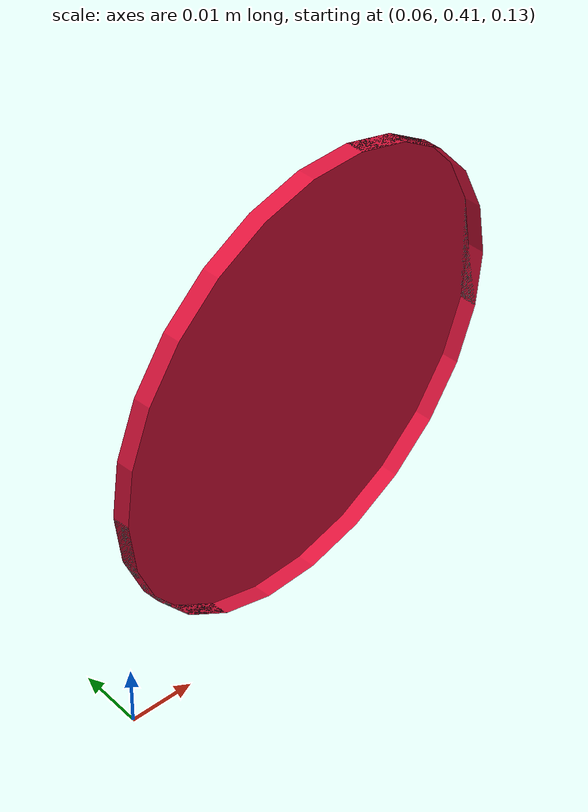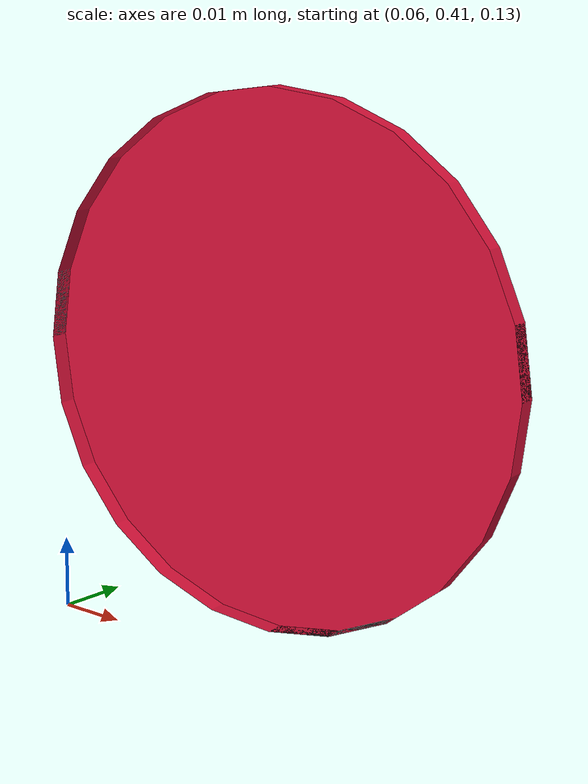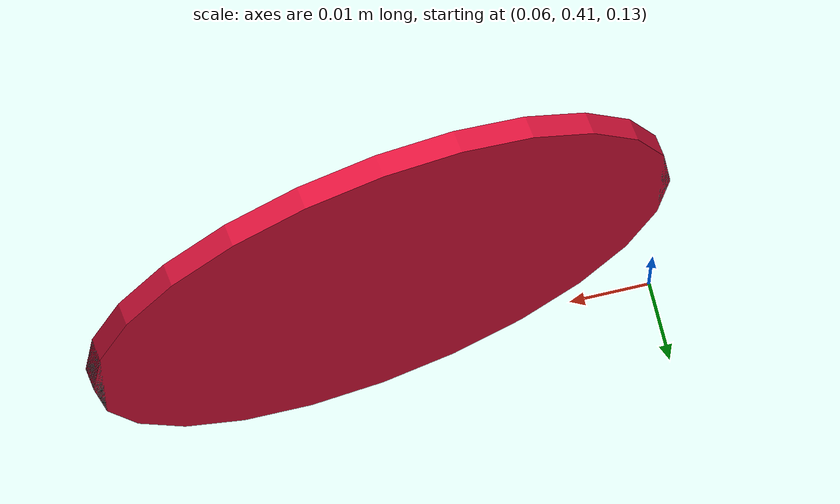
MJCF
<mujoco model="original-20">
  <default>
    <default class="visual">
      <geom group="2" type="mesh" contype="0" conaffinity="0"/>
    </default>
    <default class="collision">
      <geom group="3" type="mesh"/>
    </default>
  </default>
  <asset>
    <material name="material_0_0" specular="0.06666666666666667" shininess="0.03" rgba="0.13333333333333333 0.13333333333333333 0.13333333333333333 1"/>
    <material name="material_1_0" specular="0.06666666666666667" shininess="0.03" rgba="0.8627450980392157 0.07450980392156863 0.23137254901960785 1"/>
    <mesh file="original-20_0.obj"/>
    <mesh file="original-20_1.obj"/>
  </asset>
  <worldbody>
    <body name="original-20">
      <geom mesh="original-20_0" material="material_1_0" class="visual"/>
      <geom mesh="original-20_1" material="material_0_0" class="visual"/>
      <geom mesh="original-20_0" class="collision"/>
      <geom mesh="original-20_1" class="collision"/>
    </body>
  </worldbody>
</mujoco>
